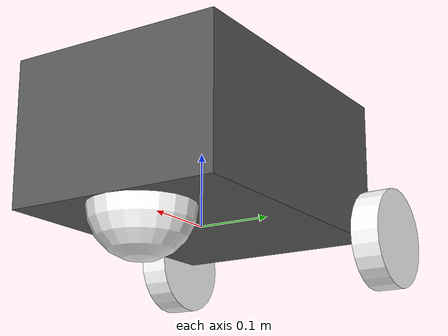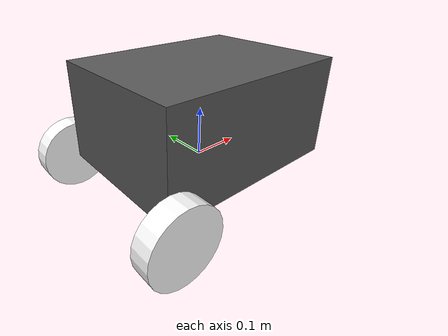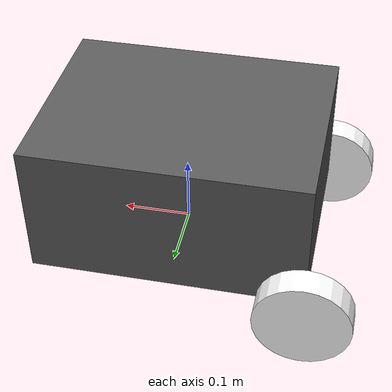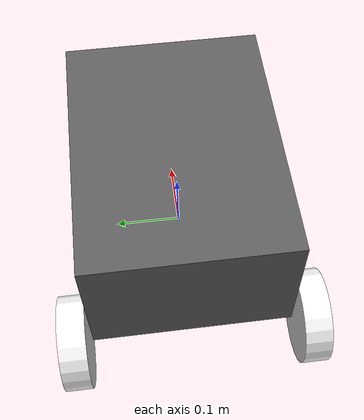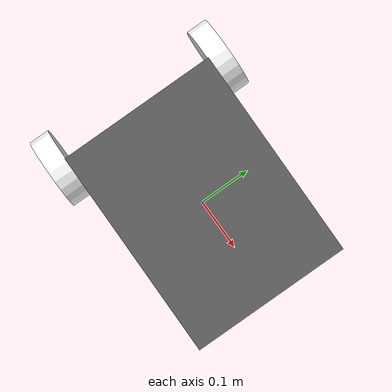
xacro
<?xml version="1.0"?>
<robot xmlns:xacro="http://www.ros.org/wiki/xacro" >

    <xacro:include filename="inertial_macros.xacro"/>

    <material name="white">
        <color rgba="1 1 1 1" />
    </material>

    <material name="orange">
        <color rgba="1 0.3 0.1 1" />
    </material>

    <material name="blue">
        <color rgba="0.2 0.2 1 1" />
    </material>

    <material name="black">
        <color rgba="${90/255} ${90/255} ${90/255} 1.0" />
    </material>

    <!-- BASE LINK -->

    <link name="base_link">
        <xacro:inertial_cylinder mass="0" length="0" radius="0">
            <origin xyz="0 0 0" rpy="0 0 0"/>
        </xacro:inertial_cylinder>
    </link>

    <!-- BASE_FOOTPRINT LINK -->

    <joint name="base_footprint_joint" type="fixed">
        <parent link="base_link"/>
        <child link="base_footprint"/>
        <origin xyz="0 0 0" rpy="0 0 0"/>
    </joint>

    <link name="base_footprint">
    </link>

    <!-- CHASSIS LINK -->

    <joint name = "chassis_joint" type="fixed">
        <parent link="base_link"/>
        <child link="chassis"/>
        <origin xyz="-0.2 0 0"/>
    </joint>

    <link name="chassis">
        <visual>
            <origin xyz="0.2 0 0.1"/>
            <geometry>
                <box size="0.4 0.3 0.2"/>
            </geometry>
            <material name="black"/>
        </visual>
        <collision>
            <origin xyz="0.2 0 0.1"/>
            <geometry>
                <box size="0.4 0.3 0.2"/>
            </geometry>
        </collision>
        <xacro:inertial_box mass="0.5" x="0.4" y="0.3" z="0.1">
            <origin xyz="0.2 0 0.1" rpy="0 0 0"/>
        </xacro:inertial_box>
    </link>

    <gazebo reference="chassis">
        <material>Gazebo/Grey</material>
    </gazebo>

    <joint name="left_wheel_joint" type="continuous">
        <parent link="base_link"/>
        <child link="left_wheel"/>
        <origin xyz=" -0.2 0.175 0" rpy="-${pi/2} 0 0"/>
        <axis xyz="0 0 1"/>
    </joint>

    <link name="left_wheel">
        <visual>
            <geometry>
                <cylinder radius="0.07" length="0.04"/>
            </geometry>
            <material name="white"/>
        </visual>
        <collision>
            <geometry>
                <cylinder radius="0.07" length="0.04"/>
            </geometry>
        </collision>
        <xacro:inertial_cylinder mass="0.05" length="0.04" radius="0.07">
            <origin xyz="0 0 0" rpy="0 0 0"/>
        </xacro:inertial_cylinder>
    </link>

    <gazebo reference="left_wheel">
        <material>Gazebo/White</material>
    </gazebo>

    <joint name="right_wheel_joint" type="continuous">
        <parent link="base_link"/>
        <child link="right_wheel"/>
        <origin xyz="-0.2 -0.175 0" rpy="${pi/2} 0 0"/>
        <axis xyz="0 0 -1"/>
    </joint>

    <link name="right_wheel">
        <visual>
            <geometry>
                <cylinder radius="0.07" length="0.04"/>
            </geometry>
            <material name="white"/>
        </visual>
        <collision>
            <geometry>
                <cylinder radius="0.07" length="0.04"/>
            </geometry>
        </collision>
        <xacro:inertial_cylinder mass="0.05" length="0.04" radius="0.07">
            <origin xyz="0 0 0" rpy="0 0 0"/>
        </xacro:inertial_cylinder>
    </link>

    <gazebo reference="right_wheel">
        <material>Gazebo/White</material>
    </gazebo>

    <joint name="caster_wheel_joint" type="fixed">
        <parent link="chassis"/>
        <child link="caster_wheel"/>
        <origin xyz="0.33 0 0"/>
    </joint>

    <link name="caster_wheel">
        <visual>
            <geometry>
                <sphere radius="0.07"/>
            </geometry>
            <material name="white"/>
        </visual>
        <collision>
            <geometry>
                <sphere radius="0.07"/>
            </geometry>
        </collision>
        <xacro:inertial_sphere mass="0.01" radius="0.07">
            <origin xyz="0 0 0" rpy="0 0 0"/>
        </xacro:inertial_sphere>
    </link>

    <gazebo reference="caster_wheel">
        <material>Gazebo/White</material>
        <mu1 value="0.001"/>
        <mu2 value="0.001"/>
    </gazebo>

</robot>
